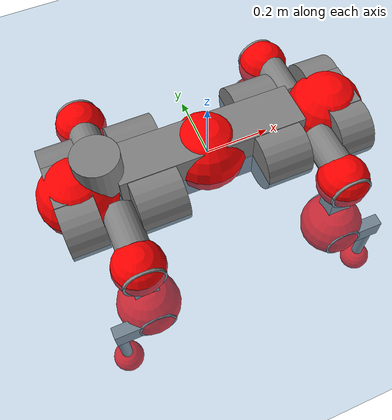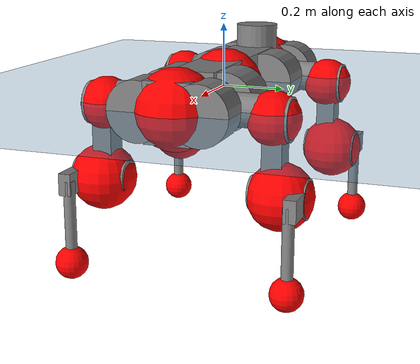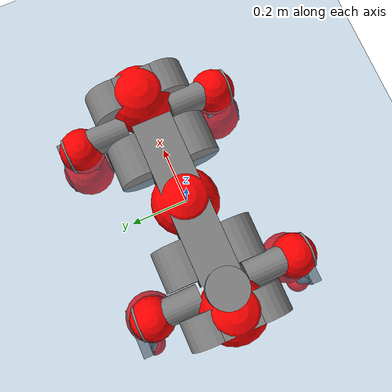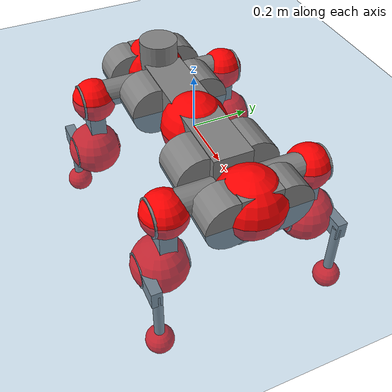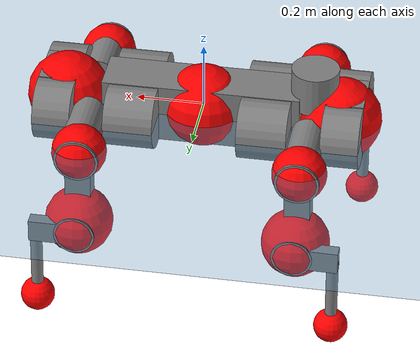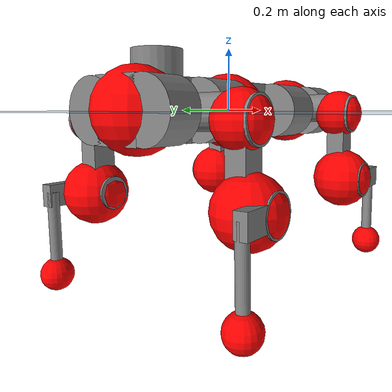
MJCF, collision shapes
<mujoco model="anymal_c">
  <compiler angle="radian" assetdir="assets" balanceinertia="true" inertiafromgeom="false"/>

  <option timestep="0.005" density="1.2" viscosity="2e-05"/>

  <size nkey="1"/>

  <visual>
    <quality shadowsize="8192"/>
    <map shadowclip="0.5"/>
  </visual>

  <default>
    <default class="/">
      <material specular="0" shininess="0.25"/>
      <geom contype="0" conaffinity="0" group="1" solref="-1000 -80"/>
      <site size="0.01 0.005 0.005" group="5"/>
      <general forcelimited="true" forcerange="-80 80" biastype="affine" gainprm="80" biasprm="0 -80 -2"/>
      <default class="anymal_c">
        <joint armature="0.01" damping="0.01" frictionloss="0.1"/>
        <default class="visual">
          <geom type="mesh" group="2"/>
          <default class="visual_zflip"/>
        </default>
        <default class="collision">
          <geom type="cylinder" group="3"/>
          <default class="foot">
            <geom size="0.03 0 0" type="sphere" condim="6" priority="1" friction="0.8 0.02 0.01" solimp="0.015 1 0.03"/>
          </default>
        </default>
      </default>
      <default class="reward_collision_sphere">
        <geom group="5" rgba="1 0 0 1"/>
      </default>
    </default>
  </default>

  <asset>
    <texture type="skybox" colorspace="auto" name="//unnamed_texture_0" builtin="gradient" rgb1="0.95 0.95 0.95" rgb2="0.95 0.95 0.95" width="100" height="600"/>
    <texture type="2d" colorspace="auto" name="texplane" builtin="checker" rgb1="0.345 0.575 0.748" rgb2="0.345 0.575 0.748" markrgb="1 1 1" width="512" height="512"/>
    <texture type="2d" colorspace="linear" name="base" file="base.png"/>
    <texture type="2d" colorspace="linear" name="top_shell" file="top_shell.png"/>
    <texture type="2d" colorspace="linear" name="bottom_shell" file="bottom_shell.png"/>
    <texture type="2d" colorspace="linear" name="remote" file="remote.png"/>
    <texture type="2d" colorspace="linear" name="hatch" file="hatch.png"/>
    <texture type="2d" colorspace="linear" name="handle" file="handle.png"/>
    <texture type="2d" colorspace="linear" name="face" file="face.png"/>
    <texture type="2d" colorspace="linear" name="battery" file="battery.png"/>
    <texture type="2d" colorspace="linear" name="lidar_cage" file="lidar_cage.png"/>
    <texture type="2d" colorspace="linear" name="depth_camera" file="depth_camera.png"/>
    <texture type="2d" colorspace="linear" name="wide_angle_camera" file="wide_angle_camera.png"/>
    <texture type="2d" colorspace="linear" name="lidar" file="lidar.png"/>
    <texture type="2d" colorspace="linear" name="drive" file="drive.png"/>
    <texture type="2d" colorspace="linear" name="hip_l" file="hip_l.png"/>
    <texture type="2d" colorspace="linear" name="shank_l" file="shank_l.png"/>
    <texture type="2d" colorspace="linear" name="foot" file="foot.png"/>
    <texture type="2d" colorspace="linear" name="thigh" file="thigh.png"/>
    <texture type="2d" colorspace="linear" name="shank_r" file="shank_r.png"/>
    <texture type="2d" colorspace="linear" name="hip_r" file="hip_r.png"/>
    <material name="MatPlane" class="/" texture="texplane" texuniform="true" texrepeat="2 2" specular="0.9" shininess="0.5"/>
    <material name="black_plastic" class="/" rgba="0.007 0.007 0.007 1"/>
    <material name="green" class="/" rgba="0.052 0.178 0.033 1"/>
    <material name="red" class="/" rgba="0.178 0.006 0.005 1"/>
    <material name="yellow" class="/" rgba="0.178 0.119 0.006 1"/>
    <material name="lwl" class="/" rgba="0.8 0.8 0.8 1"/>
    <material name="base" class="/" texture="base"/>
    <material name="top_shell" class="/" texture="top_shell"/>
    <material name="bottom_shell" class="/" texture="bottom_shell"/>
    <material name="hip_l" class="/" texture="hip_l"/>
    <material name="thigh" class="/" texture="thigh"/>
    <material name="shank_l" class="/" texture="shank_l"/>
    <material name="foot" class="/" texture="foot"/>
    <material name="hip_r" class="/" texture="hip_r"/>
    <material name="shank" class="/" texture="shank_r"/>
    <material name="hatch" class="/" texture="hatch"/>
    <material name="remote" class="/" texture="remote"/>
    <material name="handle" class="/" texture="handle"/>
    <material name="face" class="/" texture="face"/>
    <material name="depth_camera" class="/" texture="depth_camera"/>
    <material name="wide_angle_camera" class="/" texture="wide_angle_camera"/>
    <material name="battery" class="/" texture="battery"/>
    <material name="lidar_cage" class="/" texture="lidar_cage"/>
    <material name="lidar" class="/" texture="lidar"/>
    <material name="drive" class="/" texture="drive"/>
    <mesh name="base_0" class="/" file="base_0.obj"/>
    <mesh name="base_1" class="/" file="base_1.obj"/>
    <mesh name="base_2" class="/" file="base_2.obj"/>
    <mesh name="base_3" class="/" file="base_3.obj"/>
    <mesh name="base_4" class="/" file="base_4.obj"/>
    <mesh name="base_5" class="/" file="base_5.obj"/>
    <mesh name="top_shell" class="/" file="top_shell.obj"/>
    <mesh name="bottom_shell" class="/" file="bottom_shell.obj"/>
    <mesh name="remote" class="/" file="remote.obj"/>
    <mesh name="handle" class="/" file="handle.obj"/>
    <mesh name="face" class="/" file="face.obj"/>
    <mesh name="wide_angle_camera" class="/" file="wide_angle_camera.obj"/>
    <mesh name="depth_camera" class="/" file="depth_camera.obj"/>
    <mesh name="battery" class="/" file="battery.obj"/>
    <mesh name="lidar_cage" class="/" file="lidar_cage.obj"/>
    <mesh name="lidar" class="/" file="lidar.obj"/>
    <mesh name="drive" class="/" file="drive.obj"/>
    <mesh name="hip_l" class="/" file="hip_l.obj"/>
    <mesh name="thigh" class="/" file="thigh.obj"/>
    <mesh name="shank_l" class="/" file="shank_l.obj"/>
    <mesh name="foot" class="/" file="foot.obj"/>
    <mesh name="hip_r" class="/" file="hip_r.obj"/>
    <mesh name="hatch" class="/" file="hatch.obj"/>
    <mesh name="shank_r" class="/" file="shank_r.obj"/>
  </asset>

  <worldbody>
    <geom name="floor" class="/" size="100 100 0.125" type="plane" group="0" material="MatPlane"/>
    <light name="toplight_shadow" class="/" pos="0 0 5" dir="0.0990148 0.0990148 -0.990148" type="directional" ambient="0.04 0.04 0.04" diffuse="0.55 0.55 0.55" specular="0.12 0.12 0.12"/>
    <light name="toplight_fill" class="/" pos="0 0 5" dir="0.0990148 0.0990148 -0.990148" type="directional" castshadow="false" ambient="0.04 0.04 0.04" diffuse="0.3 0.3 0.3" specular="0.08 0.08 0.08"/>
    <body name="trunk" childclass="anymal_c" pos="-0.00130262 0.00403288 -2.16503e-05" quat="0.999998 -0.00174987 0.000289984 -0.0010191">
      <inertial pos="0.00495005 0.00882726 0.0330198" quat="0.490118 0.507803 0.497142 0.504747" mass="20.5146" diaginertia="0.478295 2.84539 0.0662526"/>
      <joint name="//unnamed_joint_0" type="free" armature="0" damping="0" frictionloss="0"/>
      <geom name="//unnamed_geom_1" class="visual" material="green" mesh="base_0"/>
      <geom name="//unnamed_geom_2" class="visual" material="yellow" mesh="base_1"/>
      <geom name="//unnamed_geom_3" class="visual" material="red" mesh="base_2"/>
      <geom name="//unnamed_geom_4" class="visual" material="black_plastic" mesh="base_3"/>
      <geom name="//unnamed_geom_5" class="visual" material="lwl" mesh="base_4"/>
      <geom name="//unnamed_geom_6" class="visual" material="base" mesh="base_5"/>
      <geom name="trunk_1" class="collision" size="0.293043 0.0707345 0.0909443" type="box"/>
      <geom name="trunk_2" class="collision" size="0.0909443 0.0732607" pos="0.196896 0.093918 0" quat="0.707107 0 0.707107 0"/>
      <geom name="trunk_3" class="collision" size="0.0909443 0.0732607" pos="-0.196896 0.093918 0" quat="0.707107 0 0.707107 0"/>
      <geom name="trunk_4" class="collision" size="0.0909443 0.0732607" pos="0.196896 -0.093918 0" quat="0.707107 0 0.707107 0"/>
      <geom name="trunk_5" class="collision" size="0.0909443 0.0732607" pos="-0.196896 -0.093918 0" quat="0.707107 0 0.707107 0"/>
      <geom name="//unnamed_geom_12" class="visual" material="top_shell" mesh="top_shell"/>
      <geom name="//unnamed_geom_13" class="visual" material="bottom_shell" mesh="bottom_shell"/>
      <geom name="//unnamed_geom_14" class="visual" material="remote" mesh="remote"/>
      <geom name="//unnamed_geom_15" class="visual" material="handle" mesh="handle"/>
      <geom name="//unnamed_geom_16" class="visual" pos="0.375234 0 0" quat="1 0 0 0" material="face" mesh="face"/>
      <geom name="trunk_6" class="collision" size="0.0555771 0.0707345 0.0909443" pos="0.425023 0 0" type="box"/>
      <geom name="//unnamed_geom_18" class="collision" size="0.0909443 0.0555771" pos="0.425023 0.093918 0" quat="0.707107 0 0.707107 0"/>
      <geom name="//unnamed_geom_19" class="collision" size="0.0909443 0.0555771" pos="0.425023 -0.093918 0" quat="0.707107 0 0.707107 0"/>
      <geom name="//unnamed_geom_20" class="visual" pos="0.417912 0 -0.0219905" quat="0.965926 0 0.258819 0" material="depth_camera" mesh="depth_camera"/>
      <geom name="//unnamed_geom_21" class="visual" pos="0.464403 0 0.0117443" material="wide_angle_camera" mesh="wide_angle_camera"/>
      <geom name="//unnamed_geom_22" class="visual_zflip" pos="-0.375234 0 0" quat="0 0 0 1" material="face" mesh="face"/>
      <geom name="trunk_7" class="collision" size="0.0555771 0.0707345 0.0909443" pos="-0.425023 0 0" quat="0 0 0 1" type="box"/>
      <geom name="//unnamed_geom_24" class="collision" size="0.0909443 0.0555771" pos="-0.425023 -0.093918 0" quat="0 -0.707107 0 0.707107"/>
      <geom name="//unnamed_geom_25" class="collision" size="0.0909443 0.0555771" pos="-0.425023 0.093918 0" quat="0 -0.707107 0 0.707107"/>
      <geom name="//unnamed_geom_26" class="visual" pos="-0.417912 0 -0.0219905" quat="0 -0.258819 0 0.965926" material="depth_camera" mesh="depth_camera"/>
      <geom name="//unnamed_geom_27" class="visual_zflip" pos="-0.464403 0 0.0117443" quat="0 0 0 1" material="wide_angle_camera" mesh="wide_angle_camera"/>
      <geom name="//unnamed_geom_28" class="visual" material="battery" mesh="battery"/>
      <geom name="//unnamed_geom_29" class="visual" pos="0 0.108307 0.0237081" quat="0.683013 -0.183013 0.183013 0.683013" material="depth_camera" mesh="depth_camera"/>
      <geom name="//unnamed_geom_30" class="visual" pos="0 -0.108307 0.0237081" quat="0.683013 0.183013 0.183013 -0.683013" material="depth_camera" mesh="depth_camera"/>
      <geom name="//unnamed_geom_31" class="visual" pos="-0.329518 0 0.0576625" quat="1 0 0 0" material="lidar_cage" mesh="lidar_cage"/>
      <geom name="trunk_8" class="collision" size="0.0707345 0.0606296" pos="-0.329518 0 0.104734"/>
      <geom name="//unnamed_geom_33" class="visual" pos="-0.329518 0.000171457 0.111559" quat="0.707107 0 0 -0.707107" material="lidar" mesh="lidar"/>
      <geom name="//unnamed_geom_34" class="visual" pos="0.27149 0.139337 9.61109e-09" quat="0.258819 0.965926 0 0" material="drive" mesh="drive"/>
      <geom name="//unnamed_geom_35" class="visual" pos="0.27149 -0.139337 -9.61109e-09" quat="0.258819 -0.965926 0 0" material="drive" mesh="drive"/>
      <geom name="//unnamed_geom_36" class="visual" pos="-0.27149 0.139337 -9.61109e-09" quat="0 0 0.965926 -0.258819" material="drive" mesh="drive"/>
      <geom name="//unnamed_geom_37" class="visual" pos="-0.27149 -0.139337 9.61109e-09" quat="0 0 -0.965926 -0.258819" material="drive" mesh="drive"/>
      <geom name="//unnamed_geom_38" class="visual" pos="0.105011 0 0.0572703" quat="1 0 0 0" material="hatch" mesh="hatch"/>
      <geom name="//unnamed_geom_39" class="reward_collision_sphere" size="0.121259"/>
      <geom name="//unnamed_geom_40" class="reward_collision_sphere" size="0.121259" pos="0.407371 0 0"/>
      <geom name="//unnamed_geom_41" class="reward_collision_sphere" size="0.121259" pos="-0.407371 0 0"/>
      <site name="imu" pos="0.21527 0.0212077 0.0462923" size="0.0101049"/>
      <camera name="track" pos="0 -2.68337 0" quat="0.707107 0.707107 0 0" mode="trackcom"/>
      <camera name="ego_camera" pos="0.407371 0 -0.031381" quat="-0.5 -0.5 0.5 0.5"/>
      <body name="LF_HIP" pos="0.274054 0.139288 -0.000698512" quat="0.259782 0.965667 0.000678202 -0.000305791">
        <inertial pos="0.0516367 -0.0143669 -0.00573431" quat="-0.145498 0.689154 -0.177106 0.687408" mass="2.96889" diaginertia="0.00352031 0.0221506 0.000967872"/>
        <joint name="LF_HAA" pos="0 0 0" axis="0.999999 0.000852455 -0.000651325" range="-0.671398 0.456345" armature="0.00954357" damping="0.0215052" frictionloss="0.0962113"/>
        <geom name="//unnamed_geom_42" class="visual" pos="0 0.000565377 -9.28627e-05" quat="0.258819 -0.965926 0 0" material="hip_l" mesh="hip_l"/>
        <geom name="//unnamed_geom_43" class="visual" pos="0.0542255 -0.071254 -0.0370174" quat="0.183013 -0.683013 0.683013 0.183013" material="drive" mesh="drive"/>
        <geom name="//unnamed_geom_44" class="collision" size="0.0505246 0.0707345" pos="0.0542256 -0.0160463 -0.00541714" quat="-0.353553 -0.612372 0.612372 -0.353553"/>
        <body name="LF_THIGH" pos="0.0482902 -0.0999591 -0.0321057" quat="0.180406 -0.68111 0.684866 0.185745">
          <inertial pos="0.0269514 -0.00922551 -0.194282" quat="0.992704 -0.00222205 -0.083826 0.0866435" mass="3.10491" diaginertia="0.0202138 0.117063 0.00126305"/>
          <joint name="LF_HFE" pos="0 0 0" axis="0.999768 -0.0122841 -0.0177012" range="-3.05583 3.29689" armature="0.0056596" damping="0.0204901" frictionloss="0.114956"/>
          <geom name="//unnamed_geom_45" class="visual" pos="-0.00868299 -1.36824e-05 0" quat="0.707107 0 0 -0.707107" material="thigh" mesh="thigh"/>
          <geom name="//unnamed_geom_46" class="collision" size="0.065682 0.0404197" pos="0.0362107 0 0" quat="0.5 0.5 -0.5 -0.5"/>
          <geom name="//unnamed_geom_47" class="collision" size="0.0378935 0.0303148 0.142797" pos="0.027158 0 -0.110864" quat="0.707107 0 0 -0.707107" type="box"/>
          <geom name="//unnamed_geom_48" class="visual" pos="0.0907984 0 -0.223589" quat="1 0 0 0" material="drive" mesh="drive"/>
          <geom name="//unnamed_geom_49" class="collision" size="0.0505246 0.0707345" pos="0.0274296 0 -0.223589" quat="0.707107 0 0.707107 0"/>
          <geom name="//unnamed_geom_50" class="reward_collision_sphere" size="0.0808394" pos="0.0226317 0 0"/>
          <body name="LF_SHANK" pos="0.0916824 0.000286067 -0.228727" quat="0.999999 -0.000949954 0.000812593 -0.000128542">
            <inertial pos="0.0120248 -0.0786134 -0.0575044" quat="0.992786 -0.117541 1.16599e-05 -0.0236673" mass="0.63156" diaginertia="0.00640491 0.0378683 0.00033886"/>
            <joint name="LF_KFE" pos="0 0 0" axis="0.999939 -0.00804733 -0.00759834" range="-3.32706 3.02727" armature="0.0115827" damping="0.0395084" frictionloss="0.100105"/>
            <geom name="//unnamed_geom_51" class="visual" pos="-0.00283133 -0.0150968 0" quat="0.707107 0 0 -0.707107" material="shank_l" mesh="shank_l"/>
            <geom name="LF_kfe_act" class="collision" size="0.0606296 0.0202099" pos="0.0181054 0 0" quat="0.5 0.5 -0.5 -0.5"/>
            <geom name="//unnamed_geom_53" class="collision" size="0.0581023 0.0341041 0.0191994" pos="0.0181054 -0.0771456 0" quat="0.5 0.5 -0.5 -0.5" type="box"/>
            <geom name="//unnamed_geom_54" class="visual" pos="0.0118144 -0.122866 -0.265146" quat="0.382683 0 0 -0.92388" material="foot" mesh="foot"/>
            <geom name="LF_calf" class="collision" size="0.0176836 0.142734" pos="0.0118137 -0.118001 -0.132573" quat="0.707107 0 0 -0.707107"/>
            <geom name="LF_foot" class="foot" size="0.0344477" pos="0.0118137 -0.118001 -0.247494" quat="0.707107 0 0 -0.707107"/>
            <geom name="//unnamed_geom_57" class="reward_collision_sphere" size="0.101049" pos="-0.0452634 0 0"/>
            <geom name="//unnamed_geom_58" class="reward_collision_sphere" size="0.0505246" pos="0.0118137 -0.118001 -0.247494"/>
            <site name="LF_foot" class="foot" pos="0.0118137 -0.118001 -0.247494" quat="0.707107 0 0 -0.707107" size="0.0101049"/>
          </body>
        </body>
      </body>
      <body name="RF_HIP" pos="0.280656 -0.137638 0.0118509" quat="0.258931 -0.965896 -0.000452075 -0.000259031">
        <inertial pos="0.0496759 0.0197777 -0.00504006" quat="0.168297 0.668984 0.115859 0.714642" mass="2.94702" diaginertia="0.00382864 0.021346 0.000989576"/>
        <joint name="RF_HAA" pos="0 0 0" axis="0.999908 -0.0130673 0.00366651" stiffness="0.0471681" range="-0.454693 0.588773" armature="0.0107717" damping="0.0289954" frictionloss="0.102714"/>
        <geom name="//unnamed_geom_59" class="visual" pos="0 -0.000565373 -9.28625e-05" quat="0.258819 0.965926 0 0" material="hip_r" mesh="hip_r"/>
        <geom name="//unnamed_geom_60" class="visual" pos="0.0542256 0.071254 -0.0370174" quat="0.183013 0.683013 0.683013 -0.183013" material="drive" mesh="drive"/>
        <geom name="//unnamed_geom_61" class="collision" size="0.0505246 0.0707345" pos="0.0542256 0.0160463 -0.00541714" quat="-0.353553 0.612372 0.612372 0.353553"/>
        <body name="RF_THIGH" pos="0.0553702 0.0923235 -0.0258009" quat="0.182692 0.682505 0.683642 -0.182879">
          <inertial pos="0.0257863 0.00374638 -0.200518" quat="0.992684 -0.00691664 -0.0799187 0.0902413" mass="3.19314" diaginertia="0.0194123 0.130271 0.00124629"/>
          <joint name="RF_HFE" pos="0 0 0" axis="0.999939 0.000881678 -0.011049" range="-3.17473 3.13126" armature="0.0134202" damping="0" frictionloss="0.118535"/>
          <geom name="//unnamed_geom_62" class="visual" pos="-0.00868299 -1.36824e-05 0" quat="0.707107 0 0 -0.707107" material="thigh" mesh="thigh"/>
          <geom name="//unnamed_geom_63" class="collision" size="0.065682 0.0404197" pos="0.0362107 0 0" quat="0.5 0.5 0.5 0.5"/>
          <geom name="//unnamed_geom_64" class="collision" size="0.0378935 0.0303148 0.142797" pos="0.027158 0 -0.110864" quat="0.707107 0 0 0.707107" type="box"/>
          <geom name="//unnamed_geom_65" class="visual" pos="0.0907984 0 -0.223589" quat="1 0 0 0" material="drive" mesh="drive"/>
          <geom name="//unnamed_geom_66" class="collision" size="0.0505246 0.0707345" pos="0.0274296 0 -0.223589" quat="0.707107 0 0.707107 0"/>
          <geom name="//unnamed_geom_67" class="reward_collision_sphere" size="0.0808394" pos="0.0226317 0 0"/>
          <body name="RF_SHANK" pos="0.0890259 -0.00479296 -0.230848" quat="1 -0.00017143 0.000204956 -0.000401858">
            <inertial pos="0.00845438 0.0783052 -0.0613195" quat="0.992555 0.118093 0.00271701 0.0296835" mass="0.539662" diaginertia="0.00553065 0.0335617 0.000306595"/>
            <joint name="RF_KFE" pos="0 0 0" axis="0.999966 0.00154403 0.00805715" range="-3.14354 3.14851" armature="0.00932725" damping="0.0483154" frictionloss="0.104197"/>
            <geom name="//unnamed_geom_68" class="visual" pos="-0.00283132 0.0150968 0" quat="0.707107 0 0 0.707107" material="shank" mesh="shank_r"/>
            <geom name="RF_kfe_act" class="collision" size="0.0606296 0.0202099" pos="0.0181054 0 0" quat="0.5 0.5 0.5 0.5"/>
            <geom name="//unnamed_geom_70" class="collision" size="0.0581023 0.0341041 0.0191994" pos="0.0181054 0.0771456 0" quat="0.5 0.5 0.5 0.5" type="box"/>
            <geom name="//unnamed_geom_71" class="visual" pos="0.0118131 0.122866 -0.265146" quat="0.382683 0 0 0.92388" material="foot" mesh="foot"/>
            <geom name="RF_calf" class="collision" size="0.0176836 0.142734" pos="0.0118137 0.118001 -0.132573" quat="0.707107 0 0 0.707107"/>
            <geom name="RF_foot" class="foot" size="0.0406201" pos="0.0118137 0.118001 -0.247494" quat="0.707107 0 0 0.707107"/>
            <geom name="//unnamed_geom_74" class="reward_collision_sphere" size="0.101049" pos="-0.0452634 0 0"/>
            <geom name="//unnamed_geom_75" class="reward_collision_sphere" size="0.0505246" pos="0.0118137 0.118001 -0.247494"/>
            <site name="RF_foot" class="foot" pos="0.0118137 0.118001 -0.247494" quat="0.707107 0 0 0.707107" size="0.0101049"/>
          </body>
        </body>
      </body>
      <body name="LH_HIP" pos="-0.27056 0.137565 -0.00494328" quat="0.000423626 1.00346e-05 0.965596 -0.260045">
        <inertial pos="0.0526651 0.0192875 -0.00988669" quat="0.134955 0.681868 0.125313 0.707913" mass="3.24517" diaginertia="0.0035443 0.0221898 0.000953367"/>
        <joint name="LH_HAA" pos="0 0 0" axis="0.999981 -0.0060012 0.00111282" range="-0.618767 0.729907" armature="0.00959579" damping="0" frictionloss="0.0742289"/>
        <geom name="//unnamed_geom_76" class="visual" pos="0 -0.000565373 -9.28625e-05" quat="-0.258819 -0.965926 0 0" material="hip_r" mesh="hip_r"/>
        <geom name="//unnamed_geom_77" class="visual" pos="0.0542256 0.071254 -0.0370174" quat="0.183013 0.683013 0.683013 -0.183013" material="drive" mesh="drive"/>
        <geom name="//unnamed_geom_78" class="collision" size="0.0505246 0.0707345" pos="0.0542256 0.0160463 -0.00541714" quat="-0.353553 0.612372 0.612372 0.353553"/>
        <body name="LH_THIGH" pos="0.0531713 0.0994058 -0.0329326" quat="0.182648 0.680813 0.685771 -0.18125">
          <inertial pos="0.0298461 -0.00996001 -0.193057" quat="0.994489 0.00229562 -0.0555998 0.0888555" mass="3.54138" diaginertia="0.0191411 0.126242 0.0011424"/>
          <joint name="LH_HFE" pos="0 0 0" axis="0.99892 -0.00157837 0.0464429" range="-3.18087 3.09921" armature="0.0081332" damping="0" frictionloss="0.115123"/>
          <geom name="//unnamed_geom_79" class="visual" pos="-0.00868299 -1.36824e-05 0" quat="0.707107 0 0 -0.707107" material="thigh" mesh="thigh"/>
          <geom name="//unnamed_geom_80" class="collision" size="0.065682 0.0404197" pos="0.0362107 0 0" quat="0.5 0.5 -0.5 -0.5"/>
          <geom name="//unnamed_geom_81" class="collision" size="0.0378935 0.0303148 0.142797" pos="0.027158 0 -0.110864" quat="0.707107 0 0 -0.707107" type="box"/>
          <geom name="//unnamed_geom_82" class="visual" pos="0.0907984 0 -0.223589" quat="1 0 0 0" material="drive" mesh="drive"/>
          <geom name="//unnamed_geom_83" class="collision" size="0.0505246 0.0707345" pos="0.0274296 0 -0.223589" quat="0.707107 0 0.707107 0"/>
          <geom name="//unnamed_geom_84" class="reward_collision_sphere" size="0.0808394" pos="0.0226317 0 0"/>
          <body name="LH_SHANK" pos="0.0923856 -0.00247507 -0.228151" quat="0.999999 -0.00055108 0.00113335 0.000173374">
            <inertial pos="0.00568283 0.0760427 -0.0654642" quat="0.99197 0.122037 0.000994439 0.0331804" mass="0.618365" diaginertia="0.00666367 0.043432 0.000362166"/>
            <joint name="LH_KFE" pos="0 0 0" axis="0.999947 0.00254463 0.0100059" range="-3.31834 3.14544" armature="0.00542698" damping="0" frictionloss="0.119822"/>
            <geom name="//unnamed_geom_85" class="visual" pos="-0.00283132 0.0150968 0" quat="-0.707107 0 0 -0.707107" material="shank" mesh="shank_r"/>
            <geom name="LH_kfe_act" class="collision" size="0.0606296 0.0202099" pos="0.0181054 0 0" quat="0.5 0.5 -0.5 -0.5"/>
            <geom name="//unnamed_geom_87" class="collision" size="0.0581023 0.0341041 0.0191994" pos="0.0181054 0.0771456 0" quat="0.5 0.5 -0.5 -0.5" type="box"/>
            <geom name="//unnamed_geom_88" class="visual" pos="0.0118131 0.122866 -0.265146" quat="-0.382683 0 0 -0.92388" material="foot" mesh="foot"/>
            <geom name="LH_calf" class="collision" size="0.0176836 0.142734" pos="0.0118137 0.118001 -0.132573" quat="0.707107 0 0 -0.707107"/>
            <geom name="LH_foot" class="foot" size="0.0355094" pos="0.0118137 0.118001 -0.247494" quat="0.707107 0 0 -0.707107"/>
            <geom name="//unnamed_geom_91" class="reward_collision_sphere" size="0.101049" pos="-0.0452634 0 0"/>
            <geom name="//unnamed_geom_92" class="reward_collision_sphere" size="0.0505246" pos="0.0118137 0.118001 -0.247494"/>
            <site name="LH_foot" class="foot" pos="0.0118137 0.118001 -0.247494" quat="0.707107 0 0 -0.707107" size="0.0101049"/>
          </body>
        </body>
      </body>
      <body name="RH_HIP" pos="-0.262593 -0.141636 -0.000769104" quat="-0.00105287 0.00156426 -0.967083 -0.254454">
        <inertial pos="0.0532273 -0.0206172 -0.00865322" quat="-0.126513 0.713229 -0.133551 0.67636" mass="2.96822" diaginertia="0.00363841 0.0219633 0.000878881"/>
        <joint name="RH_HAA" pos="0 0 0" axis="0.999926 0.0107 -0.00584099" range="-0.746854 0.406599" armature="0.00626637" damping="0.0182098" frictionloss="0.0840076"/>
        <geom name="//unnamed_geom_93" class="visual" pos="0 0.000565377 -9.28627e-05" quat="-0.258819 0.965926 0 0" material="hip_l" mesh="hip_l"/>
        <geom name="//unnamed_geom_94" class="visual" pos="0.0542255 -0.071254 -0.0370174" quat="-0.183013 0.683013 -0.683013 -0.183013" material="drive" mesh="drive"/>
        <geom name="//unnamed_geom_95" class="collision" size="0.0505246 0.0707345" pos="0.0542256 -0.0160463 -0.00541714" quat="0.353553 0.612372 -0.612372 0.353553"/>
        <body name="RH_THIGH" pos="0.0584873 -0.103018 -0.0324261" quat="-0.182687 0.683131 -0.682893 -0.183346">
          <inertial pos="0.0289002 0.00512193 -0.194549" quat="0.99252 -0.0110088 -0.086504 0.0854362" mass="3.21" diaginertia="0.0181479 0.131086 0.00131885"/>
          <joint name="RH_HFE" pos="0 0 0" axis="0.999997 0.00236058 -0.000728237" range="-3.09704 2.95077" armature="0.0145342" damping="0" frictionloss="0.0907929"/>
          <geom name="//unnamed_geom_96" class="visual" pos="-0.00868299 -1.36824e-05 0" quat="0.707107 0 0 -0.707107" material="thigh" mesh="thigh"/>
          <geom name="//unnamed_geom_97" class="collision" size="0.065682 0.0404197" pos="0.0362107 0 0" quat="0.5 0.5 0.5 0.5"/>
          <geom name="//unnamed_geom_98" class="collision" size="0.0378935 0.0303148 0.142797" pos="0.027158 0 -0.110864" quat="0.707107 0 0 0.707107" type="box"/>
          <geom name="//unnamed_geom_99" class="visual" pos="0.0907984 0 -0.223589" quat="1 0 0 0" material="drive" mesh="drive"/>
          <geom name="//unnamed_geom_100" class="collision" size="0.0505246 0.0707345" pos="0.0274296 0 -0.223589" quat="0.707107 0 0.707107 0"/>
          <geom name="//unnamed_geom_101" class="reward_collision_sphere" size="0.0808394" pos="0.0226317 0 0"/>
          <body name="RH_SHANK" pos="0.0879331 -0.000131084 -0.225322" quat="1 0.000770329 -0.000181667 -5.76007e-05">
            <inertial pos="0.00787911 -0.080072 -0.0639501" quat="0.993219 -0.11327 -0.000557146 -0.0261873" mass="0.573113" diaginertia="0.00616363 0.0389254 0.000322312"/>
            <joint name="RH_KFE" pos="0 0 0" axis="0.999661 -0.0176599 -0.0191153" range="-3.28011 3.09942" armature="0.00954858" damping="0" frictionloss="0.0875589"/>
            <geom name="//unnamed_geom_102" class="visual" pos="-0.00283133 -0.0150968 0" quat="0.707107 0 0 -0.707107" material="shank_l" mesh="shank_l"/>
            <geom name="RH_kfe_act" class="collision" size="0.0606296 0.0202099" pos="0.0181054 0 0" quat="0.5 0.5 0.5 0.5"/>
            <geom name="//unnamed_geom_104" class="collision" size="0.0581023 0.0341041 0.0191994" pos="0.0181054 -0.0771456 0" quat="0.5 0.5 0.5 0.5" type="box"/>
            <geom name="//unnamed_geom_105" class="visual" pos="0.0118144 -0.122866 -0.265146" quat="0.382683 0 0 -0.92388" material="foot" mesh="foot"/>
            <geom name="RH_calf" class="collision" size="0.0176836 0.142734" pos="0.0118137 -0.118001 -0.132573" quat="0.707107 0 0 0.707107"/>
            <geom name="RH_foot" class="foot" size="0.0193359" pos="0.0118137 -0.118001 -0.247494" quat="0.707107 0 0 0.707107"/>
            <geom name="//unnamed_geom_108" class="reward_collision_sphere" size="0.101049" pos="-0.0452634 0 0"/>
            <geom name="//unnamed_geom_109" class="reward_collision_sphere" size="0.0505246" pos="0.0118137 -0.118001 -0.247494"/>
            <site name="RH_foot" class="foot" pos="0.0118137 -0.118001 -0.247494" quat="0.707107 0 0 0.707107" size="0.0101049"/>
          </body>
        </body>
      </body>
    </body>
  </worldbody>

  <contact>
    <pair class="/" geom1="floor" geom2="LF_foot" name="//unnamed_contact_0"/>
    <pair class="/" geom1="floor" geom2="RF_foot" name="//unnamed_contact_1"/>
    <pair class="/" geom1="floor" geom2="LH_foot" name="//unnamed_contact_2"/>
    <pair class="/" geom1="floor" geom2="RH_foot" name="//unnamed_contact_3"/>
  </contact>

  <actuator>
    <general name="LF_HAA" class="/" joint="LF_HAA" forcerange="-75.7378 75.7378" gainprm="79.3001" biasprm="0 -79.3001 -2.22484"/>
    <general name="LF_HFE" class="/" joint="LF_HFE" forcerange="-80.5764 80.5764" gainprm="79.3001" biasprm="0 -79.3001 -2.22484"/>
    <general name="LF_KFE" class="/" joint="LF_KFE" forcerange="-88.332 88.332" gainprm="79.3001" biasprm="0 -79.3001 -2.22484"/>
    <general name="RF_HAA" class="/" joint="RF_HAA" forcerange="-87.5799 87.5799" gainprm="79.3001" biasprm="0 -79.3001 -2.22484"/>
    <general name="RF_HFE" class="/" joint="RF_HFE" forcerange="-82.5432 82.5432" gainprm="79.3001" biasprm="0 -79.3001 -2.22484"/>
    <general name="RF_KFE" class="/" joint="RF_KFE" forcerange="-95.5907 95.5907" gainprm="79.3001" biasprm="0 -79.3001 -2.22484"/>
    <general name="LH_HAA" class="/" joint="LH_HAA" forcerange="-81.6382 81.6382" gainprm="79.3001" biasprm="0 -79.3001 -2.22484"/>
    <general name="LH_HFE" class="/" joint="LH_HFE" forcerange="-80.9381 80.9381" gainprm="79.3001" biasprm="0 -79.3001 -2.22484"/>
    <general name="LH_KFE" class="/" joint="LH_KFE" forcerange="-82.5911 82.5911" gainprm="79.3001" biasprm="0 -79.3001 -2.22484"/>
    <general name="RH_HAA" class="/" joint="RH_HAA" forcerange="-86.7568 86.7568" gainprm="79.3001" biasprm="0 -79.3001 -2.22484"/>
    <general name="RH_HFE" class="/" joint="RH_HFE" forcerange="-78.9526 78.9526" gainprm="79.3001" biasprm="0 -79.3001 -2.22484"/>
    <general name="RH_KFE" class="/" joint="RH_KFE" forcerange="-58.7556 58.7556" gainprm="79.3001" biasprm="0 -79.3001 -2.22484"/>
  </actuator>

  <sensor>
    <gyro site="imu" name="imu_angular_velocity"/>
    <velocimeter site="imu" name="imu_linear_velocity"/>
    <framelinvel objtype="site" objname="LF_foot" name="LF_foot_global_linear_velocity"/>
    <framelinvel objtype="site" objname="RF_foot" name="RF_foot_global_linear_velocity"/>
    <framelinvel objtype="site" objname="LH_foot" name="LH_foot_global_linear_velocity"/>
    <framelinvel objtype="site" objname="RH_foot" name="RH_foot_global_linear_velocity"/>
  </sensor>

  <keyframe>
    <key name="home" qpos="0 0 0.55 1 0 0 0 0 0.4 -0.8 0 -0.4 0.8 0 -0.4 0.8 0 0.4 -0.8"/>
  </keyframe>
</mujoco>
